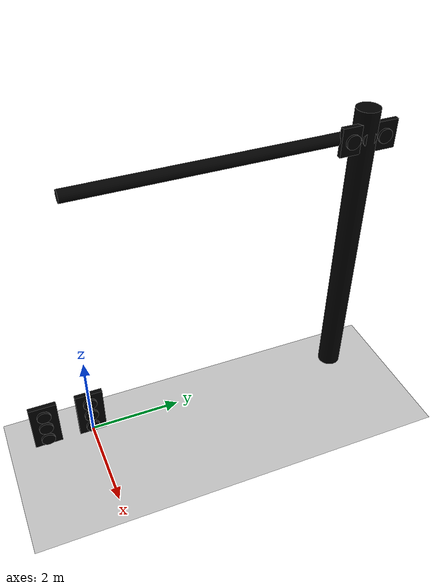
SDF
<sdf version='1.7'>
  <world name='default'>
    <light name='sun' type='directional'>
      <cast_shadows>1</cast_shadows>
      <pose>0 0 10 0 -0 0</pose>
      <diffuse>0.8 0.8 0.8 1</diffuse>
      <specular>0.2 0.2 0.2 1</specular>
      <attenuation>
        <range>1000</range>
        <constant>0.9</constant>
        <linear>0.01</linear>
        <quadratic>0.001</quadratic>
      </attenuation>
      <direction>-0.5 0.1 -0.9</direction>
      <spot>
        <inner_angle>0</inner_angle>
        <outer_angle>0</outer_angle>
        <falloff>0</falloff>
      </spot>
    </light>
    <model name='ground_plane'>
      <static>1</static>
      <link name='link'>
        <collision name='collision'>
          <geometry>
            <plane>
              <normal>0 0 1</normal>
              <size>100 100</size>
            </plane>
          </geometry>
          <surface>
            <contact>
              <collide_bitmask>65535</collide_bitmask>
              <ode/>
            </contact>
            <friction>
              <ode>
                <mu>100</mu>
                <mu2>50</mu2>
              </ode>
              <torsional>
                <ode/>
              </torsional>
            </friction>
            <bounce/>
          </surface>
          <max_contacts>10</max_contacts>
        </collision>
        <visual name='visual'>
          <cast_shadows>0</cast_shadows>
          <geometry>
            <plane>
              <normal>0 0 1</normal>
              <size>100 100</size>
            </plane>
          </geometry>
          <material>
            <script>
              <uri>file://media/materials/scripts/gazebo.material</uri>
              <name>Gazebo/Grey</name>
            </script>
          </material>
        </visual>
        <self_collide>0</self_collide>
        <enable_wind>0</enable_wind>
        <kinematic>0</kinematic>
      </link>
    </model>
    <model name="gazebo_traffic_light">
      <plugin name="traffic_light_plugin" filename="libgazebo_traffic_light.so" />
      <static>false</static>

      <link name="light_fixture">
        <gravity>false</gravity>
        <pose>0 0 0 0 0 0</pose>
        <visual name="visual">
          <pose>0 0 0.535 0 0 0</pose>
          <geometry>
            <box>
              <size>0.1 0.6 1.2</size>
            </box>
          </geometry>
          <material>
            <ambient>0 0 0 1</ambient>
            <diffuse>0 0 0 1</diffuse>
            <specular>0 0 0 1</specular>
          </material>
        </visual>
        <collision name="collision">
          <pose>0 0 0.535 0 0 0</pose>
          <geometry>
            <box>
              <size>0.1 0.6 1.2</size>
            </box>
          </geometry>
        </collision>
      </link>

      <link name="green_off">
        <gravity>false</gravity>
        <pose>0.075 0 0.175 0 1.5707 0</pose>
        <collision name="collision">
          <geometry>
            <cylinder>
              <radius>0.15</radius>
              <length>0.05</length>
            </cylinder>
          </geometry>
        </collision>

        <visual name="visual">
          <geometry>
            <cylinder>
              <radius>0.15</radius>
              <length>0.05</length>
            </cylinder>
          </geometry>
          <material>
            <ambient>0 1 0 1</ambient>
            <diffuse>0 0 0 1</diffuse>
            <specular>0 0 0 1</specular>
            <emissive>0 0 0 1</emissive>
          </material>
        </visual>
      </link>

      <link name="green_on">
        <gravity>false</gravity>
        <pose>0 0 0.175 0 1.5707 0</pose>
        <collision name="collision">
          <geometry>
            <cylinder>
              <radius>0.15</radius>
              <length>0.002</length>
            </cylinder>
          </geometry>
        </collision>

        <visual name="visual">
          <geometry>
            <cylinder>
              <radius>0.15</radius>
              <length>0.002</length>
            </cylinder>
          </geometry>
          <material>
            <ambient>0 0 0 1</ambient>
            <diffuse>0 0 0 1</diffuse>
            <specular>0 0 0 1</specular>
            <emissive>0 1 0 1</emissive>
          </material>
        </visual>
      </link>

      <link name="yellow_off">
        <gravity>false</gravity>
        <pose>0.075 0 0.525 0 1.5707 0</pose>
        <collision name="collision">
          <geometry>
            <cylinder>
              <radius>0.15</radius>
              <length>0.05</length>
            </cylinder>
          </geometry>
        </collision>

        <visual name="visual">
          <geometry>
            <cylinder>
              <radius>0.15</radius>
              <length>0.05</length>
            </cylinder>
          </geometry>
          <material>
            <ambient>1 1 0 1</ambient>
            <diffuse>0 0 0 1</diffuse>
            <specular>0 0 0 1</specular>
            <emissive>0 0 0 1</emissive>
          </material>
        </visual>
      </link>

      <link name="yellow_on">
        <gravity>false</gravity>
        <pose>0 0 0.525 0 1.5707 0</pose>
        <collision name="collision">
          <geometry>
            <cylinder>
              <radius>0.15</radius>
              <length>0.002</length>
            </cylinder>
          </geometry>
        </collision>

        <visual name="visual">
          <geometry>
            <cylinder>
              <radius>0.15</radius>
              <length>0.002</length>
            </cylinder>
          </geometry>
          <material>
            <ambient>0 0 0 1</ambient>
            <diffuse>0 0 0 1</diffuse>
            <specular>0 0 0 1</specular>
            <emissive>1 1 0 1</emissive>
          </material>
        </visual>
      </link>

      <link name="red_off">
        <gravity>false</gravity>
        <pose>0.075 0 0.875 0 1.5707 0</pose>
        <collision name="collision">
          <geometry>
            <cylinder>
              <radius>0.15</radius>
              <length>0.05</length>
            </cylinder>
          </geometry>
        </collision>

        <visual name="visual">
          <geometry>
            <cylinder>
              <radius>0.15</radius>
              <length>0.05</length>
            </cylinder>
          </geometry>
          <material>
            <ambient>1 0 0 1</ambient>
            <diffuse>0 0 0 1</diffuse>
            <specular>0 0 0 1</specular>
            <emissive>0 0 0 1</emissive>
          </material>
        </visual>
      </link>

      <link name="red_on">
        <gravity>false</gravity>
        <pose>0 0 0.875 0 1.5707 0</pose>
        <collision name="collision">
          <geometry>
            <cylinder>
              <radius>0.15</radius>
              <length>0.002</length>
            </cylinder>
          </geometry>
        </collision>

        <visual name="visual">
          <geometry>
            <cylinder>
              <radius>0.15</radius>
              <length>0.002</length>
            </cylinder>
          </geometry>
          <material>
            <ambient>0 0 0 1</ambient>
            <diffuse>0 0 0 1</diffuse>
            <specular>0 0 0 1</specular>
            <emissive>1 0 0 1</emissive>
          </material>
        </visual>
      </link>

      <joint name="green_switch" type="prismatic" >
        <parent>green_off</parent>
        <child>green_on</child>
        <axis>
          <xyz>0 0 1</xyz>
          <limit>
            <lower>0</lower>
            <upper>0.101</upper>
          </limit>
        </axis>
      </joint>

      <joint name="green_base" type="fixed" >
        <parent>light_fixture</parent>
        <child>green_off</child>
      </joint>

      <joint name="yellow_switch" type="prismatic" >
        <parent>yellow_off</parent>
        <child>yellow_on</child>
        <axis>
          <xyz>0 0 1</xyz>
          <limit>
            <lower>0</lower>
            <upper>0.101</upper>
          </limit>
        </axis>
      </joint>

      <joint name="yellow_base" type="fixed" >
        <parent>light_fixture</parent>
        <child>yellow_off</child>
      </joint>

      <joint name="red_switch" type="prismatic" >
        <parent>red_off</parent>
        <child>red_on</child>
        <axis>
          <xyz>0 0 1</xyz>
          <limit>
            <lower>0</lower>
            <upper>0.101</upper>
          </limit>
        </axis>
      </joint>

      <joint name="red_base" type="fixed" >
        <parent>light_fixture</parent>
        <child>red_off</child>
      </joint>
    </model>
    <model name="test_included_traffic_light">
      <plugin name="traffic_light_plugin" filename="libgazebo_traffic_light.so" />
      <include>
        <uri>model://gazebo_traffic_light</uri>
        <static>false</static>
        <pose>0 -1 0 0 0 0</pose>
      </include>
    </model>
    <model name="test_cantilevered_traffic_light">
      <plugin name="traffic_light_plugin" filename="libgazebo_traffic_light.so" />
      <include>
        <uri>model://cantilevered_light</uri>
        <static>false</static>
        <pose>0 6 0 0 0 0</pose>
      </include>
    </model>
    <gravity>0 0 -9.8</gravity>
    <magnetic_field>6e-06 2.3e-05 -4.2e-05</magnetic_field>
    <atmosphere type='adiabatic'/>
    <physics type='ode'>
      <max_step_size>0.001</max_step_size>
      <real_time_factor>1</real_time_factor>
      <real_time_update_rate>1000</real_time_update_rate>
    </physics>
    <scene>
      <ambient>0.4 0.4 0.4 1</ambient>
      <background>0.7 0.7 0.7 1</background>
      <shadows>1</shadows>
    </scene>
    <wind/>
    <spherical_coordinates>
      <surface_model>EARTH_WGS84</surface_model>
      <latitude_deg>0</latitude_deg>
      <longitude_deg>0</longitude_deg>
      <elevation>0</elevation>
      <heading_deg>0</heading_deg>
    </spherical_coordinates>
    <gui fullscreen='0'>
      <camera name='user_camera'>
        <pose>7.96218 -4.09718 4.32943 0 0.351643 2.87619</pose>
        <view_controller>orbit</view_controller>
        <projection_type>perspective</projection_type>
      </camera>
    </gui>
  </world>
</sdf>

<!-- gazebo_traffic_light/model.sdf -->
<sdf version="1.7">
  <model name="gazebo_traffic_light">
    <static>false</static>

    <link name="light_fixture">
      <gravity>false</gravity>
      <pose>0 0 0 0 0 0</pose>
      <visual name="visual">
        <pose>0 0 0.535 0 0 0</pose>
        <geometry>
          <box>
            <size>0.1 0.6 1.2</size>
          </box>
        </geometry>
        <material>
          <ambient>0 0 0 1</ambient>
          <diffuse>0 0 0 1</diffuse>
          <specular>0 0 0 1</specular>
        </material>
      </visual>
      <collision name="collision">
        <pose>0 0 0.535 0 0 0</pose>
        <geometry>
          <box>
            <size>0.1 0.6 1.2</size>
          </box>
        </geometry>
      </collision>
    </link>

    <link name="green_off">
      <gravity>false</gravity>
      <pose>0.075 0 0.175 0 1.5707 0</pose>
      <collision name="collision">
        <geometry>
          <cylinder>
            <radius>0.15</radius>
            <length>0.05</length>
          </cylinder>
        </geometry>
      </collision>

      <visual name="visual">
        <geometry>
          <cylinder>
            <radius>0.15</radius>
            <length>0.05</length>
          </cylinder>
        </geometry>
        <material>
          <ambient>0 1 0 1</ambient>
          <diffuse>0 0 0 1</diffuse>
          <specular>0 0 0 1</specular>
          <emissive>0 0 0 1</emissive>
        </material>
      </visual>
    </link>

    <link name="green_on">
      <gravity>false</gravity>
      <pose>0 0 0.175 0 1.5707 0</pose>
      <collision name="collision">
        <geometry>
          <cylinder>
            <radius>0.15</radius>
            <length>0.002</length>
          </cylinder>
        </geometry>
      </collision>

      <visual name="visual">
        <geometry>
          <cylinder>
            <radius>0.15</radius>
            <length>0.002</length>
          </cylinder>
        </geometry>
        <material>
          <ambient>0 0 0 1</ambient>
          <diffuse>0 0 0 1</diffuse>
          <specular>0 0 0 1</specular>
          <emissive>0 1 0 1</emissive>
        </material>
      </visual>
    </link>

    <link name="yellow_off">
      <gravity>false</gravity>
      <pose>0.075 0 0.525 0 1.5707 0</pose>
      <collision name="collision">
        <geometry>
          <cylinder>
            <radius>0.15</radius>
            <length>0.05</length>
          </cylinder>
        </geometry>
      </collision>

      <visual name="visual">
        <geometry>
          <cylinder>
            <radius>0.15</radius>
            <length>0.05</length>
          </cylinder>
        </geometry>
        <material>
          <ambient>1 1 0 1</ambient>
          <diffuse>0 0 0 1</diffuse>
          <specular>0 0 0 1</specular>
          <emissive>0 0 0 1</emissive>
        </material>
      </visual>
    </link>

    <link name="yellow_on">
      <gravity>false</gravity>
      <pose>0 0 0.525 0 1.5707 0</pose>
      <collision name="collision">
        <geometry>
          <cylinder>
            <radius>0.15</radius>
            <length>0.002</length>
          </cylinder>
        </geometry>
      </collision>

      <visual name="visual">
        <geometry>
          <cylinder>
            <radius>0.15</radius>
            <length>0.002</length>
          </cylinder>
        </geometry>
        <material>
          <ambient>0 0 0 1</ambient>
          <diffuse>0 0 0 1</diffuse>
          <specular>0 0 0 1</specular>
          <emissive>1 1 0 1</emissive>
        </material>
      </visual>
    </link>

    <link name="red_off">
      <gravity>false</gravity>
      <pose>0.075 0 0.875 0 1.5707 0</pose>
      <collision name="collision">
        <geometry>
          <cylinder>
            <radius>0.15</radius>
            <length>0.05</length>
          </cylinder>
        </geometry>
      </collision>

      <visual name="visual">
        <geometry>
          <cylinder>
            <radius>0.15</radius>
            <length>0.05</length>
          </cylinder>
        </geometry>
        <material>
          <ambient>1 0 0 1</ambient>
          <diffuse>0 0 0 1</diffuse>
          <specular>0 0 0 1</specular>
          <emissive>0 0 0 1</emissive>
        </material>
      </visual>
    </link>

    <link name="red_on">
      <gravity>false</gravity>
      <pose>0 0 0.875 0 1.5707 0</pose>
      <collision name="collision">
        <geometry>
          <cylinder>
            <radius>0.15</radius>
            <length>0.002</length>
          </cylinder>
        </geometry>
      </collision>

      <visual name="visual">
        <geometry>
          <cylinder>
            <radius>0.15</radius>
            <length>0.002</length>
          </cylinder>
        </geometry>
        <material>
          <ambient>0 0 0 1</ambient>
          <diffuse>0 0 0 1</diffuse>
          <specular>0 0 0 1</specular>
          <emissive>1 0 0 1</emissive>
        </material>
      </visual>
    </link>

    <joint name="green_switch" type="prismatic" >
      <parent>green_off</parent>
      <child>green_on</child>
      <axis>
        <xyz>0 0 1</xyz>
        <limit>
          <lower>0</lower>
          <upper>0.101</upper>
        </limit>
      </axis>
    </joint>

    <joint name="green_base" type="fixed" >
      <parent>light_fixture</parent>
      <child>green_off</child>
    </joint>

    <joint name="yellow_switch" type="prismatic" >
      <parent>yellow_off</parent>
      <child>yellow_on</child>
      <axis>
        <xyz>0 0 1</xyz>
        <limit>
          <lower>0</lower>
          <upper>0.101</upper>
        </limit>
      </axis>
    </joint>

    <joint name="yellow_base" type="fixed" >
      <parent>light_fixture</parent>
      <child>yellow_off</child>
    </joint>

    <joint name="red_switch" type="prismatic" >
      <parent>red_off</parent>
      <child>red_on</child>
      <axis>
        <xyz>0 0 1</xyz>
        <limit>
          <lower>0</lower>
          <upper>0.101</upper>
        </limit>
      </axis>
    </joint>

    <joint name="red_base" type="fixed" >
      <parent>light_fixture</parent>
      <child>red_off</child>
    </joint>
  </model>
</sdf>

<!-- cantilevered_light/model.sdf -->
<sdf version="1.7">
  <model name="cantilevered_light">
    <static>false</static>

    <link name="base">
      <gravity>false</gravity>
      <pose>0 0 0 0 0 0</pose>
      <visual name="visual">
        <pose>0 0 3.275 0 0 0</pose>
        <geometry>
          <cylinder>
            <radius>0.25</radius>
            <length>6.55</length>
          </cylinder>
        </geometry>
        <material>
          <ambient>0 0 0 1</ambient>
          <diffuse>0 0 0 1</diffuse>
          <specular>0 0 0 1</specular>
        </material>
      </visual>
      <collision name="collision">
        <pose>0 0 3.275 0 0 0</pose>
        <geometry>
          <cylinder>
            <radius>0.25</radius>
            <length>6.55</length>
          </cylinder>
        </geometry>
      </collision>
    </link>

    <link name="cross_beam">
      <gravity>false</gravity>
      <pose>0 0 6.015 1.5707 0 0</pose>
      <visual name="visual">
        <pose>0 0 3.0 0 0 0</pose>
        <geometry>
          <cylinder>
            <radius>0.125</radius>
            <length>6.0</length>
          </cylinder>
        </geometry>
        <material>
          <ambient>0 0 0 1</ambient>
          <diffuse>0 0 0 1</diffuse>
          <specular>0 0 0 1</specular>
        </material>
      </visual>
      <collision name="collision">
        <pose>0 0 3.0 0 0 0</pose>
        <geometry>
          <cylinder>
            <radius>0.125</radius>
            <length>6.0</length>
          </cylinder>
        </geometry>
      </collision>
    </link>

    <frame name="base_frame" attached_to="base">
    </frame>

    <frame name="cross_beam_frame">
      <pose relative_to="base_frame">0 0 6.015 1.5707 0 0</pose>
    </frame>

    <include>
      <name>traffic_light</name>
      <uri>model://gazebo_traffic_light</uri>
      <static>false</static>
      <pose relative_to="cross_beam_frame">0.13 -0.535 6.0 -1.5707 0 0</pose>
    </include>

    <joint name="cross_beam_fixed" type="fixed" >
      <parent>base</parent>
      <child>cross_beam</child>
    </joint>

    <joint name="light_mount" type="fixed" >
      <parent>cross_beam</parent>
      <child>traffic_light::light_fixture</child>
    </joint>
  </model>
</sdf>
